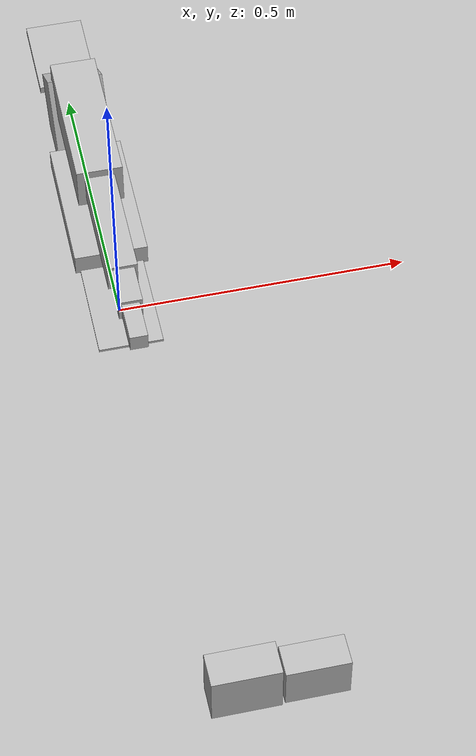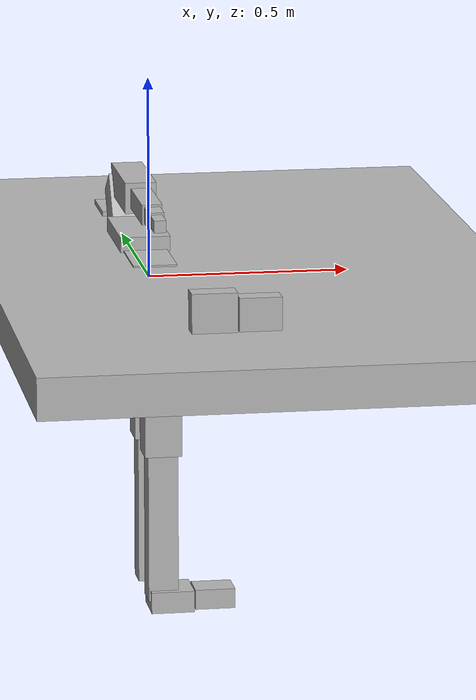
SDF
<?xml version="1.0" ?>
<sdf version="1.4">
    <world name="default">
        <physics type="ode">
            <default>1</default>
            <max_step_size>0.001</max_step_size>
            <real_time_factor>1</real_time_factor>
            <real_time_update_rate>1000</real_time_update_rate>
            <gravity>0 0 -9.81</gravity>
        </physics>

        <model name="ground_model">
            <static>true</static>
            <link name="ground_link">
                <visual>
                    <pose>0 0 0 0 0 0</pose>
                    <geometry>
                        <box>
                            <size>10.0 10. 0.1</size>
                        </box>
                    </geometry>
                </visual>
                <collision>
                    <pose>0 0 0 0 0 0</pose>
                    <geometry>
                        <box>
                            <size>10.0 10.0 0.1</size>
                        </box>
                    </geometry>
                </collision>
            </link>
            <joint type="fixed" name="world_to_ground_joint">
                <parent>world</parent>
                <child>ground</child>
                <pose>0 0 0 0 0 0</pose>
            </joint>
        </model>

        <model name="human_model">
            <self_collide>true</self_collide>
            <pose>0 0 0 0 0 0</pose>
            <link name="h_pelvis">
                <pose>0 0 0 0 0 0</pose>
                <inertia>
                    <mass>5.6154</mass>
                    <offset>0.0 0 0.0</offset>
                </inertia>
                <visual>
                    <pose>0.0 0 0.0 0 0 0</pose>
                    <geometry>
                        <box>
                            <size>0.1088 0.23936 0.1088 </size>
                        </box>
                    </geometry>
                </visual>
                <collision>
                    <pose>0.0 0 0.0 0 0 0</pose>
                    <geometry>
                        <box>
                            <size>0.1088 0.23936 0.1088</size>
                        </box>
                    </geometry>
                </collision>
            </link>

            <!-- Left Leg -->
            <link name="h_thigh_left">
                <pose>0.01649408 -0.09072832 -0.05774016 0.0 0.0 0.0</pose>
                <inertia>
                    <mass>6.5709</mass>
                    <offset>0.0 0.0 -0.18605 </offset>
                </inertia>
                <visual>
                    <pose>0.0 0.0 -0.18605 0.0 0.0 0.0</pose>
                    <geometry>
                        <box>
                            <size>0.093025 0.093025 0.3721 </size>
                        </box>
                    </geometry>
                </visual>
                <collision>
                    <pose>0.0 0.0 -0.18605  0.0 0.0 0.0</pose>
                    <geometry>
                        <box>
                            <size>0.093025 0.093025 0.3721 </size>
                        </box>
                    </geometry>
                </collision>
            </link>

            <link name="h_shin_left">
                <pose>0.01649408 -0.09072832 -0.42984016 0.0 0.0 0.0</pose>
                <inertia>
                    <mass>1.7738</mass>
                    <offset>0.0 0.0 -0.18685</offset>
                </inertia>
                <visual>
                    <pose>0.0 0.0 -0.18685 0.0 0.0 0.0</pose>
                    <geometry>
                        <box>
                            <size>0.07474 0.07474 0.3737</size>
                        </box>
                    </geometry>
                </visual>
                <collision>
                    <pose>0.0 0.0 -0.18685 0.0 0.0 0.0</pose>
                    <geometry>
                        <box>
                            <size>0.07474 0.07474 0.3737</size>
                        </box>
                    </geometry>
                </collision>
            </link>

            <link name="h_heel_left">
                <pose>0.01649408 -0.09072832 -0.80354016 0.0 0.0 0.0</pose>
                <inertia>
                    <mass>0.5831</mass>
                    <offset>0.0216 0.0 0.0</offset>
                </inertia>
                <visual>
                    <pose>0.0216 0.0 0.0 0.0 0.0 0.0</pose>
                    <geometry>
                        <box>
                            <size>0.1080 0.1080 0.0540 </size>
                        </box>
                    </geometry>
                    <color>1.0 0.5 0.0</color>
                </visual>
                <collision>
                    <pose>0.0216 0.0 0.0 0.0 0.0 0.0</pose>
                    <geometry>
                        <box>
                            <size>0.1080 0.1080 0.0540</size>
                        </box>
                    </geometry>
                </collision>
            </link>

            <link name="h_toe_left">
                <pose>0.12649408 -0.09072832 -0.80354016 0.0 0.0 0.0</pose>
                <inertia>
                    <mass>0.50</mass>
                    <offset>0.02 0.0 0.0</offset>
                </inertia>
                <visual>
                    <pose>0.02 0.0 0.0 0.0 0.0 0.0</pose>
                    <geometry>
                        <box>
                            <size>0.1000 0.0800 0.0500</size>
                        </box>
                    </geometry>
                    <color>1.0 0.5 0.0</color>
                </visual>
                <collision>
                    <pose>0.02 0.0 0.0 0.0 0.0 0.0</pose>
                    <geometry>
                        <box>
                            <size>0.1000 0.0800 0.0500</size>
                        </box>
                    </geometry>
                </collision>
            </link>

            <!-- Right Leg -->
            <link name="h_thigh_right">
                <pose>0.01649408 0.09072832 -0.05774016 0.0 0.0 0.0</pose>
                <inertia>
                    <mass>6.5709</mass>
                    <offset>0.0 0.0 -0.18605</offset>
                </inertia>
                <visual>
                    <pose>0.0 0.0 -0.18605 0.0 0.0 0.0</pose>
                    <geometry>
                        <box>
                            <size>0.093025 0.093025 0.3721</size>
                        </box>
                    </geometry>
                </visual>
                <collision>
                    <pose>0.0 0.0 -0.18605 0.0 0.0 0.0</pose>
                    <geometry>
                        <box>
                            <size>0.093025 0.093025 0.3721</size>
                        </box>
                    </geometry>
                </collision>
            </link>

            <link name="h_shin_right">
                <pose>0.01649408 0.09072832 -0.42984016 0.0 0.0 0.0</pose>
                <inertia>
                    <mass>1.7738</mass>
                    <offset>0.0 0.0 -0.18685</offset>
                </inertia>
                <visual>
                    <pose>0.0 0.0 -0.18685 0.0 0.0 0.0</pose>
                    <geometry>
                        <box>
                            <size>0.07474 0.07474 0.3737</size>
                        </box>
                    </geometry>
                </visual>
                <collision>
                    <pose>0.0 0.0 -0.18685 0.0 0.0 0.0</pose>
                    <geometry>
                        <box>
                            <size>0.07474 0.07474 0.3737</size>
                        </box>
                    </geometry>
                </collision>
            </link>
            <!--SHIFTED Y AXIS TO BE CORRECTLY Z AXIS UP TO HERE-->
            <link name="h_heel_right">
                <pose>0.01649408 -0.80354016 0.09072832 0.0 0.0 0.0</pose>
                <inertia>
                    <mass>0.5831</mass>
                    <offset>0.0216 0.0 0.0</offset>
                </inertia>
                <visual>
                    <pose>0.0216 0.0 0.0 0.0 0.0 0.0</pose>
                    <geometry>
                        <box>
                            <size>0.1080 0.0540 0.1080</size>
                        </box>
                    </geometry>
                    <color>1.0 0.5 0.0</color>
                </visual>
                <collision>
                    <pose>0.0216 0.0 0.0 0.0 0.0 0.0</pose>
                    <geometry>
                        <box>
                            <size>0.1080 0.0540 0.1080</size>
                        </box>
                    </geometry>
                </collision>
            </link>

            <link name="h_toe_right">
                <pose>0.12649408 -0.80354016 0.09072832 0.0 0.0 0.0</pose>
                <inertia>
                    <mass>0.50</mass>
                    <offset>0.02 0.0 0.0</offset>
                </inertia>
                <visual>
                    <pose>0.02 0.0 0.0 0.0 0.0 0.0</pose>
                    <geometry>
                        <box>
                            <size>0.1000 0.0500 0.0800</size>
                        </box>
                    </geometry>
                    <color>1.0 0.5 0.0</color>
                </visual>
                <collision>
                    <pose>0.02 0.0 0.0 0.0 0.0 0.0</pose>
                    <geometry>
                        <box>
                            <size>0.1000 0.0500 0.0800</size>
                        </box>
                    </geometry>
                </collision>
            </link>

            <!-- Upper link -->
            <link name="h_abdomen">
                <pose>0.0 0.0562 0.0 0.0 0.0 0.0</pose>
                <inertia>
                    <mass>4.1846</mass>
                    <offset>0.0 0.12535 0.0</offset>
                </inertia>
                <visual>
                    <pose>0.0 0.12535 0.0 0.0 0.0 0.0</pose>
                    <geometry>
                        <box>
                            <size>0.12535 0.2507 0.17549</size>
                        </box>
                    </geometry>
                </visual>
                <collision>
                    <pose>0.0 0.12535 0.0 0.0 0.0 0.0</pose>
                    <geometry>
                        <box>
                            <size>0.12535 0.2507 0.17549</size>
                        </box>
                    </geometry>
                </collision>
            </link>

            <link name="h_spine">
                <pose>0.0 0.3069 0.0 0.0 0.0 0.0</pose>
                <inertia>
                    <mass>4.8608</mass>
                    <offset>0.0 0.0908 0.0</offset>
                </inertia>
                <visual>
                    <pose>0.0 0.0908 0.0 0.0 0.0 0.0</pose>
                    <geometry>
                        <box>
                            <size>0.0908 0.1816 0.0908</size>
                        </box>
                    </geometry>
                </visual>
                <collision>
                    <pose>0.0 0.0908 0.0 0.0 0.0 0.0</pose>
                    <geometry>
                        <box>
                            <size>0.0908 0.1816 0.0908</size>
                        </box>
                    </geometry>
                </collision>
            </link>

            <link name="h_head">
                <pose>0.0 0.4885 0.0 0.0 0.0 0.0</pose>
                <inertia>
                    <mass>3.92</mass>
                    <offset>0.0 0.07825 0.0</offset>
                </inertia>
                <visual>
                    <pose>0.0 0.07825 0.0 0.0 0.0 0.0</pose>
                    <geometry>
                        <box>
                            <size>0.101725 0.1565 0.1252</size>
                        </box>
                    </geometry>
                    <color>1.0 0.5 0.0</color>
                </visual>
                <collision>
                    <pose>0.0 0.07825 0.0 0.0 0.0 0.0</pose>
                    <geometry>
                        <box>
                            <size>0.101725 0.1565 0.1252</size>
                        </box>
                    </geometry>
                </collision>
            </link>

            <!-- Left Arm -->
            <link name="h_scapula_left">
                <pose>0.0 0.3069 0.0 -0.9423 0.0 0.0</pose>
                <inertia>
                    <mass>2.6264</mass>
                    <offset>0.0 0.09615 0.0</offset>
                </inertia>
                <visual>
                    <pose>0.0 0.09615 0.0 0.0 0.0 0.0</pose>
                    <geometry>
                        <box>
                            <size>0.09615 0.1923 0.09615</size>
                        </box>
                    </geometry>
                </visual>
                <collision>
                    <pose>0.0 0.09615 0.0 0.0 0.0 0.0</pose>
                    <geometry>
                        <box>
                            <size>0.09615 0.1923 0.09615</size>
                        </box>
                    </geometry>
                </collision>
            </link>

			<link name="h_bicep_left_midjoint">
                <pose>0.0 0.397146 -0.169809 0.0 0.0 0.0</pose>
                <collision>
                    <pose>0.0 -0.1308 0.0 0.0 0.0 0.0</pose>
                    <geometry>
                        <box>
                            <size>0.07848 0.2616 0.07848</size>
                        </box>
                    </geometry>
                </collision>
            </link>

            <link name="h_bicep_left">
                <pose>0.0 0.397146 -0.169809 0.0 0.0 0.0</pose>
                <inertia>
                    <mass>1.6219</mass>
                    <offset>0.0 -0.1308 0.0</offset>
                </inertia>
                <visual>
                    <pose>0.0 -0.1308 0.0 0.0 0.0 0.0</pose>
                    <geometry>
                        <box>
                            <size>0.07848 0.2616 0.07848</size>
                        </box>
                    </geometry>
                </visual>
                <collision>
                    <pose>0.0 -0.1308 0.0 0.0 0.0 0.0</pose>
                    <geometry>
                        <box>
                            <size>0.07848 0.2616 0.07848</size>
                        </box>
                    </geometry>
                </collision>
            </link>

            <link name="h_forearm_left">
                <pose>0.0 0.135546 -0.169809 0.0 0.0 0.0</pose>
                <inertia>
                    <mass>0.6909</mass>
                    <offset>0.0 -0.1012 0.0</offset>
                </inertia>
                <visual>
                    <pose>0.0 -0.1012 0.0 0.0 0.0 0.0</pose>
                    <geometry>
                        <box>
                            <size>0.0506 0.2024 0.0506</size>
                        </box>
                    </geometry>
                </visual>
                <collision>
                    <pose>0.0 -0.1012 0.0 0.0 0.0 0.0</pose>
                    <geometry>
                        <box>
                            <size>0.0506 0.2024 0.0506</size>
                        </box>
                    </geometry>
                </collision>
            </link>

			<link name="h_hand_left">
                <pose>0.0 -0.066854 -0.169809 0.0 0.0 0.0</pose>
                <inertia>
                    <mass>0.175</mass>
                    <offset>0.0 -0.035 0.0</offset>
                </inertia>
                <visual>
                    <pose>0.0 -0.035 0.0 0.0 0.0 0.0</pose>
                    <geometry>
                        <box>
                            <size>0.04 0.07 0.04</size>
                        </box>
                    </geometry>
                    <color>1.0 0.5 0.0</color>
                </visual>
                <collision>
                    <pose>0.0 -0.035 0.0 0.0 0.0 0.0</pose>
                    <geometry>
                        <box>
                            <size>0.04 0.07 0.04</size>
                        </box>
                    </geometry>
                </collision>
            </link>

			<link name="h_hand_left2">
                <pose>0.0 -0.137 -0.169809 0.0 0.0 0.0</pose>
                <inertia>
                    <mass>0.12</mass>
                    <offset>0.0 -0.035 0.0</offset>
                </inertia>
                <visual>
                    <pose>0.0 -0.035 0.0 0.0 0.0 0.0</pose>
                    <geometry>
                        <box>
                            <size>0.03 0.07 0.03</size>
                        </box>
                    </geometry>
                    <color>1.0 0.5 0.0</color>
                </visual>
                <collision>
                    <pose>0.0 -0.035 0.0 0.0 0.0 0.0</pose>
                    <geometry>
                        <box>
                            <size>0.03 0.07 0.03</size>
                        </box>
                    </geometry>
                </collision>
            </link>

            <!-- Right Arm -->
            <link name="h_scapula_right">
                <pose>0.0 0.3069 0.0 0.9423 0.0 0.0</pose>
                <inertia>
                    <mass>2.6264</mass>
                    <offset>0.0 0.09615 0.0</offset>
                </inertia>
                <visual>
                    <pose>0.0 0.09615 0.0 0.0 0.0 0.0</pose>
                    <geometry>
                        <box>
                            <size>0.09615 0.1923 0.09615</size>
                        </box>
                    </geometry>
                </visual>
                <collision>
                    <pose>0.0 0.09615 0.0 0.0 0.0 0.0</pose>
                    <geometry>
                        <box>
                            <size>0.09615 0.1923 0.09615</size>
                        </box>
                    </geometry>
                </collision>
            </link>

			<link name="h_bicep_right_midjoint">
                <pose>0.0 0.397146 0.169809 0.0 0.0 0.0</pose>
                <collision>
                    <pose>0.0 -0.1308 0.0 0.0 0.0 0.0</pose>
                    <geometry>
                        <box>
                            <size>0.07848 0.2616 0.07848</size>
                        </box>
                    </geometry>
                </collision>
            </link>

            <link name="h_bicep_right">
                <pose>0.0 0.397146 0.169809 0.0 0.0 0.0</pose>
                <inertia>
                    <mass>1.6219</mass>
                    <offset>0.0 -0.1308 0.0</offset>
                </inertia>
                <visual>
                    <pose>0.0 -0.1308 0.0 0.0 0.0 0.0</pose>
                    <geometry>
                        <box>
                            <size>0.07848 0.2616 0.07848</size>
                        </box>
                    </geometry>
                </visual>
                <collision>
                    <pose>0.0 -0.1308 0.0 0.0 0.0 0.0</pose>
                    <geometry>
                        <box>
                            <size>0.07848 0.2616 0.07848</size>
                        </box>
                    </geometry>
                </collision>
            </link>

            <link name="h_forearm_right">
                <pose>0.0 0.135546 0.169809 0.0 0.0 0.0</pose>
                <inertia>
                    <mass>0.6909</mass>
                    <offset>0.0 -0.1012 0.0</offset>
                </inertia>
                <visual>
                    <pose>0.0 -0.1012 0.0 0.0 0.0 0.0</pose>
                    <geometry>
                        <box>
                            <size>0.0506 0.2024 0.0506</size>
                        </box>
                    </geometry>
                </visual>
                <collision>
                    <pose>0.0 -0.1012 0.0 0.0 0.0 0.0</pose>
                    <geometry>
                        <box>
                            <size>0.0506 0.2024 0.0506</size>
                        </box>
                    </geometry>
                </collision>
            </link>

            <link name="h_hand_right">
                <pose>0.0 -0.066854 0.169809 0.0 0.0 0.0</pose>
                <inertia>
                    <mass>0.175</mass>
                    <offset>0.0 -0.035 0.0</offset>
                </inertia>
                <visual>
                    <pose>0.0 -0.035 0.0 0.0 0.0 0.0</pose>
                    <geometry>
                        <box>
                            <size>0.04 0.07 0.04</size>
                        </box>
                    </geometry>
                    <color>1.0 0.5 0.0</color>
                </visual>
                <collision>
                    <pose>0.0 -0.035 0.0 0.0 0.0 0.0</pose>
                    <geometry>
                        <box>
                            <size>0.04 0.07 0.04</size>
                        </box>
                    </geometry>
                </collision>
            </link>

			<link name="h_hand_right2">
                <pose>0.0 -0.137 0.169809 0.0 0.0 0.0</pose>
                <inertia>
                    <mass>0.12</mass>
                    <offset>0.0 -0.035 0.0</offset>
                </inertia>
                <visual>
                    <pose>0.0 -0.035 0.0 0.0 0.0 0.0</pose>
                    <geometry>
                        <box>
                            <size>0.03 0.07 0.03</size>
                        </box>
                    </geometry>
                    <color>1.0 0.5 0.0</color>
                </visual>
                <collision>
                    <pose>0.0 -0.035 0.0 0.0 0.0 0.0</pose>
                    <geometry>
                        <box>
                            <size>0.03 0.07 0.03</size>
                        </box>
                    </geometry>
                </collision>
            </link>

            <!-- JOINT: Pelvis -->
            <joint type="free" name="j_pelvis">
                <parent>world</parent>
                <child>h_pelvis</child>
                <init_pos>0 0 0 0 0 0</init_pos>
                <init_vel>0 0 0 0 0 0</init_vel>
            </joint>

            <!-- JOINT: Left Leg -->
            <joint type="euler" name="j_thigh_left">
                <pose>0.0 0.0 0.0 0.0 0.0 0.0</pose>
                <parent>h_pelvis</parent>
                <child>h_thigh_left</child>
                <axis_order>zyx</axis_order>
                <init_pos>0 0 0</init_pos>
                <init_vel>0 0 0</init_vel>
				<axis>
					<limit>
						<lower>-3.1416</lower>
						<upper>3.1416</upper>
					</limit>
				</axis>
				<axis2>
					<limit>
						<lower>-0.75</lower>
						<upper>0.75</upper>
					</limit>
				</axis2>
				<axis3>
					<limit>
						<lower>-3.1416</lower>
						<upper>3.1416</upper>
					</limit>
				</axis3>

            </joint>

            <joint type="revolute" name="j_shin_left">
                <pose>0.0 0.0 0.0 0.0 0.0 0.0</pose>
                <parent>h_thigh_left</parent>
                <child>h_shin_left</child>
                <axis>
                    <xyz>0.0 0.0 1.0</xyz>
					<limit>
						<lower>-2.6416</lower>
						<upper>0</upper>
					</limit>
                </axis>
                <init_pos>-0.17</init_pos>
                <init_vel>0</init_vel>
            </joint>

            <joint type="universal" name="j_heel_left">
                <pose>0.0 0.0 0.0 0.0 0.0 0.0</pose>
                <parent>h_shin_left</parent>
                <child>h_heel_left</child>
                <axis>
                    <xyz>0.0 0.0 1.0</xyz>
					<limit>
						<lower>-1.136</lower>
						<upper>0.350</upper>
					</limit>
                </axis>
                <axis2>
                    <xyz>0.0 1.0 0.0</xyz>
					<limit>
						<lower>-0.2854</lower>
						<upper>0.3854</upper>
					</limit>
                </axis2>
                <init_pos>0 0</init_pos>
                <init_vel>0 0</init_vel>
            </joint>

            <joint type="revolute" name="j_toe_left">
                <pose>0.0 0.0 0.0 0.0 0.0 0.0</pose>
                <parent>h_heel_left</parent>
                <child>h_toe_left</child>
                <axis>
                    <xyz>0.0 0.0 1.0</xyz>
					<limit>
						<lower>-0.4236</lower>
						<upper>0.5536</upper>
					</limit>
                </axis>
                <init_pos>0</init_pos>
                <init_vel>0</init_vel>
            </joint>

            <!-- JOINT: Right Leg -->
            <joint type="euler" name="j_thigh_right">
                <pose>0.0 0.0 0.0 0.0 0.0 0.0</pose>
                <parent>h_pelvis</parent>
                <child>h_thigh_right</child>
                <axis_order>zyx</axis_order>
                <init_pos>0 0 0</init_pos>
                <init_vel>0 0 0</init_vel>
				<axis>
					<limit>
						<lower>-3.1416</lower>
						<upper>3.1416</upper>
					</limit>
				</axis>
				<axis2>
					<limit>
						<lower>-0.75</lower>
						<upper>0.75</upper>
					</limit>
				</axis2>
				<axis3>
					<limit>
						<lower>-3.1416</lower>
						<upper>3.1416</upper>
					</limit>
				</axis3>
            </joint>

            <joint type="revolute" name="j_shin_right">
                <pose>0.0 0.0 0.0 0.0 0.0 0.0</pose>
                <parent>h_thigh_right</parent>
                <child>h_shin_right</child>
                <axis>
                    <xyz>0.0 0.0 1.0</xyz>
					<limit>
						<lower>-2.6416</lower>
						<upper>0</upper>
					</limit>
                </axis>
                <init_pos>-0.17</init_pos>
                <init_vel>0</init_vel>
            </joint>

            <joint type="universal" name="j_heel_right">
                <pose>0.0 0.0 0.0 0.0 0.0 0.0</pose>
                <parent>h_shin_right</parent>
                <child>h_heel_right</child>
                <axis>
                    <xyz>0.0 0.0 1.0</xyz>
					<limit>
						<lower>-1.136</lower>
						<upper>0.350</upper>
					</limit>
                </axis>
                <axis2>
                    <xyz>0.0 1.0 0.0</xyz>
					<limit>
						<lower>-0.2854</lower>
						<upper>0.3854</upper>
					</limit>
                </axis2>
                <init_pos>0 0</init_pos>
                <init_vel>0 0</init_vel>
            </joint>

            <joint type="revolute" name="j_toe_right">
                <pose>0.0 0.0 0.0 0.0 0.0 0.0</pose>
                <parent>h_heel_right</parent>
                <child>h_toe_right</child>
                <axis>
                    <xyz>0.0 0.0 1.0</xyz>
					<limit>
						<lower>-0.4236</lower>
						<upper>0.5536</upper>
					</limit>
                </axis>
                <init_pos>0</init_pos>
                <init_vel>0</init_vel>
            </joint>

            <joint type="universal" name="j_abdomen">
                <pose>0.0 0.0 0.0 0.0 0.0 0.0</pose>
                <parent>h_pelvis</parent>
                <child>h_abdomen</child>
                <axis>
                    <xyz>1.0 0.0 0.0</xyz>
					<limit>
						<lower>-0.5</lower>
						<upper>0.5</upper>
					</limit>
                </axis>
                <axis2>
                    <xyz>0.0 0.0 1.0</xyz>
					<limit>
						<lower>-0.85</lower>
						<upper>0.5</upper>
					</limit>
                </axis2>
                <init_pos>0 0</init_pos>
                <init_vel>0 0</init_vel>
            </joint>

            <joint type="revolute" name="j_spine">
                <pose>0.0 0.0 0.0 0.0 0.0 0.0</pose>
                <parent>h_abdomen</parent>
                <child>h_spine</child>
                <axis>
                    <xyz>0.0 1.0 0.0</xyz>
					<limit>
						<lower>-1</lower>
						<upper>1</upper>
					</limit>
                </axis>
                <init_pos>0</init_pos>
                <init_vel>0</init_vel>
            </joint>

            <joint type="universal" name="j_head">
                <pose>0.0 0.0 0.0 0.0 0.0 0.0</pose>
                <parent>h_spine</parent>
                <child>h_head</child>
                <axis>
                    <xyz>0.0 0.0 1.0</xyz>
					<limit>
						<lower>-1.0472</lower>
						<upper>1.0472</upper>
					</limit>
                </axis>
                <axis2>
                    <xyz>1.0 0.0 0.0</xyz>
					<limit>
						<lower>-1.0472</lower>
						<upper>1.0472</upper>
					</limit>
                </axis2>
                <init_pos>0 0</init_pos>
                <init_vel>0 0</init_vel>
            </joint>

            <!-- JOINT: Left Arm -->
            <joint type="revolute" name="j_scapula_left">
                <pose>0.0 0.0 0.0 0.0 0.0 0.0</pose>
                <parent>h_spine</parent>
                <child>h_scapula_left</child>
                <axis>
                    <xyz>1.0 0.0 0.0</xyz>
					<limit>
						<lower>-0.2491</lower>
						<upper>0.2491</upper>
					</limit>
                </axis>
                <init_pos>0.0</init_pos>
                <init_vel>0</init_vel>
            </joint>

            <joint type="euler" name="j_bicep_left">
                <pose>0.0 0.0 0.0 -1.2423 0.0 0.0</pose>
                <parent>h_scapula_left</parent>
                <child>h_bicep_left_midjoint</child>
                <axis_order>xyz</axis_order>
                <init_pos>0 0 0</init_pos>
                <init_vel>0 0 0</init_vel>
				<axis>
					<limit>
						<lower>-0.65</lower>
						<upper>2.7</upper>
					</limit>
				</axis>
				<axis2>
					<limit>
						<lower>-3.14</lower>
						<upper>1.7</upper>
					</limit>
				</axis2>
				<axis3>
					<limit>
						<lower>-0.001</lower>
						<upper>0.001</upper>
					</limit>
				</axis3>
            </joint>

			<joint type="revolute" name="j_becip_left_roll">
                <pose>0.0 0.0 0.0 0.0 0.0 0.0</pose>
                <parent>h_bicep_left_midjoint</parent>
                <child>h_bicep_left</child>
                <axis>
                    <xyz>0.0 1.0 0.0</xyz>
					<limit>
						<lower>-1.3</lower>
						<upper>0.7</upper>
					</limit>
                </axis>
                <init_pos>0</init_pos>
                <init_vel>0</init_vel>
            </joint>

			<joint type="universal" name="j_forearm_left">
                <pose>0.0 0.0 0.0 0.0 0.0 0.0</pose>
                <parent>h_bicep_left</parent>
                <child>h_forearm_left</child>
                <axis>
                    <xyz>0.0 0.0 1.0</xyz>
					<limit>
						<lower>0</lower>
						<upper>2.7</upper>
					</limit>
                </axis>
                <axis2>
                    <xyz>0.0 1.0 0.0</xyz>
					<limit>
						<lower>-3</lower>
						<upper>0</upper>
					</limit>
                </axis2>
                <init_pos>0 0</init_pos>
                <init_vel>0 0</init_vel>
            </joint>

			<joint type="universal" name="j_wrist_left">
                <pose>0.0 0.0 0.0 0.0 0.0 0.0</pose>
                <parent>h_forearm_left</parent>
                <child>h_hand_left</child>
                <axis>
                    <xyz>0.0 0.0 1.0</xyz>
					<limit>
						<lower>-1</lower>
						<upper>1</upper>
					</limit>
                </axis>
                <axis2>
                    <xyz>1.0 0.0 0.0</xyz>
					<limit>
						<lower>-0.5</lower>
						<upper>0.5</upper>
					</limit>
                </axis2>
                <init_pos>0 0</init_pos>
                <init_vel>0 0</init_vel>
            </joint>

			<joint type="revolute" name="j_hand_left">
                <pose>0.0 0.0 0.0 0.0 0.0 0.0</pose>
                <parent>h_hand_left</parent>
                <child>h_hand_left2</child>
                <axis>
                    <xyz>0 0.0 1.0</xyz>
					<limit>
						<lower>-0.5</lower>
						<upper>01.6</upper>
					</limit>
                </axis>
                <init_pos>0</init_pos>
                <init_vel>0</init_vel>
            </joint>

            <!-- JOINT: Right Arm -->
            <joint type="revolute" name="j_scapula_right">
                <pose>0.0 0.0 0.0 0.0 0.0 0.0</pose>
                <parent>h_spine</parent>
                <child>h_scapula_right</child>
                <axis>
                    <xyz>1.0 0.0 0.0</xyz>
					<limit>
						<lower>-0.2491</lower>
						<upper>0.2491</upper>
					</limit>
                </axis>
                <init_pos>0</init_pos>
                <init_vel>0</init_vel>
            </joint>

            <joint type="euler" name="j_bicep_right">
                <pose>0.0 0.0 0.0 1.2423 0.0 0.0</pose>
                <parent>h_scapula_right</parent>
                <child>h_bicep_right_midjoint</child>
                <axis_order>xyz</axis_order>
                <init_pos>0 0 0</init_pos>
                <init_vel>0 0 0</init_vel>
				<axis>
					<limit>
						<lower>-2.7</lower>
						<upper>0.65</upper>
					</limit>
				</axis>
				<axis2>
					<limit>
						<lower>-1.7</lower>
						<upper>3.14</upper>
					</limit>
				</axis2>
				<axis3>
					<limit>
						<lower>-0.001</lower>
						<upper>0.001</upper>
					</limit>
				</axis3>
            </joint>

			<joint type="revolute" name="j_becip_right_roll">
                <pose>0.0 0.0 0.0 0.0 0.0 0.0</pose>
                <parent>h_bicep_right_midjoint</parent>
                <child>h_bicep_right</child>
                <axis>
                    <xyz>0.0 1.0 0.0</xyz>
					<limit>
						<lower>-0.7</lower>
						<upper>1.3</upper>
					</limit>
                </axis>
                <init_pos>0</init_pos>
                <init_vel>0</init_vel>
            </joint>

            <joint type="universal" name="j_forearm_right">
                <pose>0.0 0.0 0.0 0.0 0.0 0.0</pose>
                <parent>h_bicep_right</parent>
                <child>h_forearm_right</child>
                <axis>
                    <xyz>0.0 0.0 1.0</xyz>
					<limit>
						<lower>0</lower>
						<upper>2.7</upper>
					</limit>
                </axis>
                <axis2>
                    <xyz>0.0 1.0 0.0</xyz>
					<limit>
						<lower>0</lower>
						<upper>3</upper>
					</limit>
                </axis2>
                <init_pos>0 0</init_pos>
                <init_vel>0 0</init_vel>
            </joint>

			<joint type="universal" name="j_wrist_right">
                <pose>0.0 0.0 0.0 0.0 0.0 0.0</pose>
                <parent>h_forearm_right</parent>
                <child>h_hand_right</child>
                <axis>
                    <xyz>0.0 0.0 1.0</xyz>
					<limit>
						<lower>-1.2</lower>
						<upper>1.5</upper>
					</limit>
                </axis>
                <axis2>
                    <xyz>1.0 0.0 0.0</xyz>
					<limit>
						<lower>-0.5</lower>
						<upper>0.5</upper>
					</limit>
                </axis2>
                <init_pos>0 0</init_pos>
                <init_vel>0 0</init_vel>
            </joint>

			<joint type="revolute" name="j_hand_right">
                <pose>0.0 0.0 0.0 0.0 0.0 0.0</pose>
                <parent>h_hand_right</parent>
                <child>h_hand_right2</child>
                <axis>
                    <xyz>0.0 0.0 1.0</xyz>
					<limit>
						<lower>-0.5</lower>
						<upper>01.6</upper>
					</limit>
                </axis>
                <init_pos>0</init_pos>
                <init_vel>0</init_vel>
            </joint>

        </model>

    </world>
</sdf>
